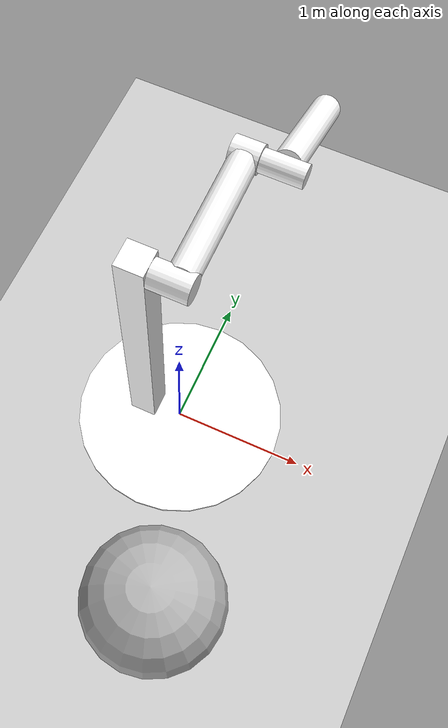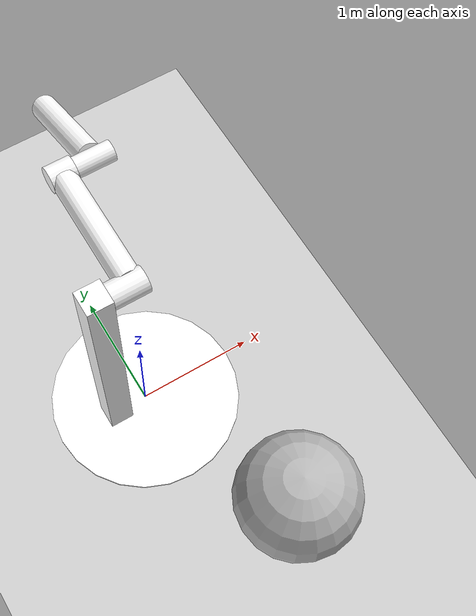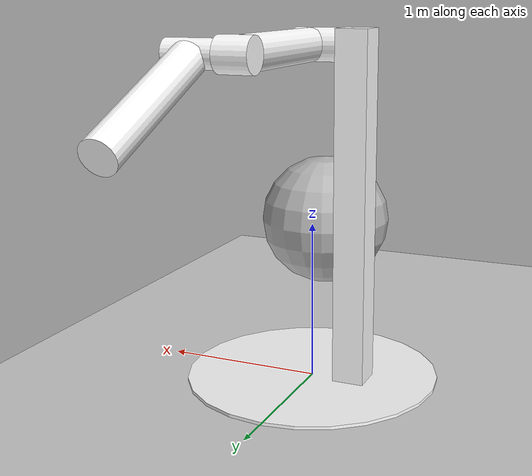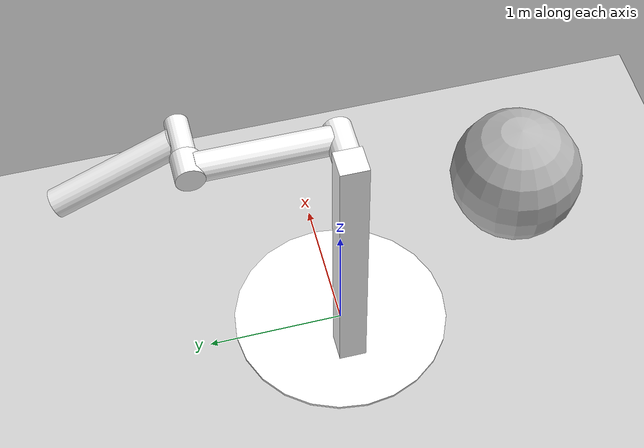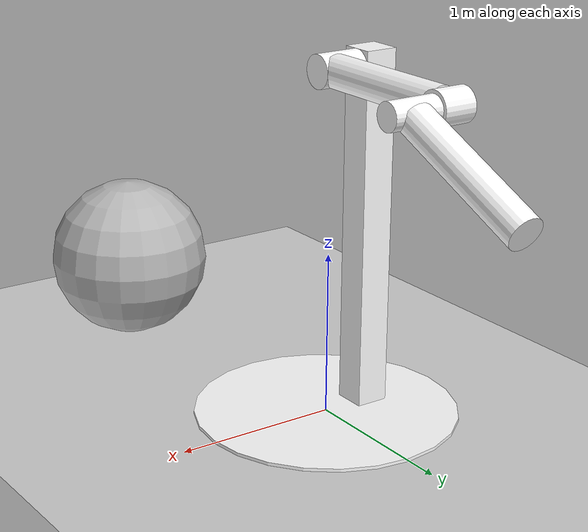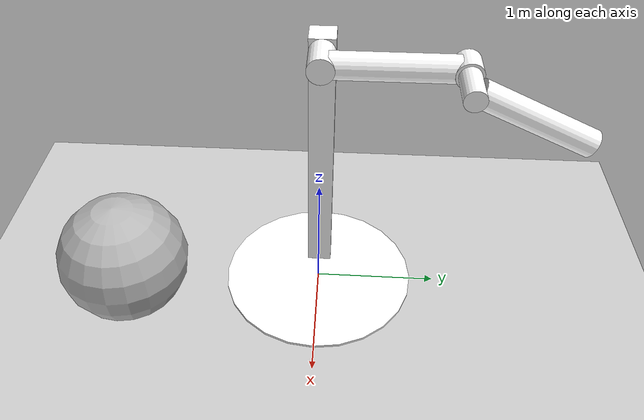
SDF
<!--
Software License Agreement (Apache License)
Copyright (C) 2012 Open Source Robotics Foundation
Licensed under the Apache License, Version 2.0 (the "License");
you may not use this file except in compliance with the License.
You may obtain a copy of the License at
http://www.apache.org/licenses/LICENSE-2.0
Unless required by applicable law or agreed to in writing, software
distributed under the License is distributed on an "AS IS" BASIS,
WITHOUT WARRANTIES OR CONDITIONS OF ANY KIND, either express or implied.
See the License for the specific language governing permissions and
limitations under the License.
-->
<?xml version="1.0" ?>
<sdf version="1.6">
  <world name="default">
    <include>
      <uri>model://ground_plane</uri>
    </include>

    <!-- blue point light -->
    <light type="point" name="point">
      <pose>0 0 0 0 0 0</pose>
      <diffuse>0 0 1 1</diffuse>
      <specular>.1 .1 .1 1</specular>
      <attenuation>
        <range>1</range>
        <linear>0.2</linear>
        <constant>0.8</constant>
        <quadratic>0.01</quadratic>
      </attenuation>
      <cast_shadows>false</cast_shadows>
    </light>

    <!-- red point light -->
    <light type="point" name="point2">
      <pose>0 0 0 0 0 0</pose>
      <diffuse>1 0 0 1</diffuse>
      <specular>.1 .1 .1 1</specular>
      <attenuation>
        <range>20</range>
        <linear>0.2</linear>
        <constant>0.8</constant>
        <quadratic>0.01</quadratic>
      </attenuation>
      <cast_shadows>false</cast_shadows>
    </light>

    <!-- green spot light -->
    <light type="spot" name="spot">
      <pose>0 0 0 0 0 0</pose>
      <diffuse>0 1 0 1</diffuse>
      <specular>.2 .2 .2 1</specular>
      <attenuation>
        <range>10</range>
        <linear>0.01</linear>
        <constant>0.2</constant>
        <quadratic>0.0</quadratic>
      </attenuation>
      <direction>0 0 -1</direction>
      <spot>
        <inner_angle>0.1</inner_angle>
        <outer_angle>0.5</outer_angle>
        <falloff>1.2</falloff>
      </spot>
      <cast_shadows>false</cast_shadows>
    </light>

    <!-- double pendulum with point and spot lights attached using plugin-->
    <model name="double_pendulum_with_lights">
      <include>
        <uri>model://double_pendulum_with_base</uri>
      </include>
      <plugin name="attach_light" filename="libAttachLightPlugin.so">
        <link>
          <link_name>double_pendulum_with_base::upper_link</link_name>
          <light>
            <light_name>point</light_name>
          </light>
          <light>
            <pose>0 0 0.45 0 0 0</pose>
            <light_name>point2</light_name>
          </light>
        </link>
        <link>
          <link_name>double_pendulum_with_base::lower_link</link_name>
          <light>
            <pose>0 0 0.9 3.14 0 0</pose>
            <light_name>spot</light_name>
          </light>
        </link>
      </plugin>
    </model>

    <!-- sphere with point light as child of link -->
    <model name="sphere_with_light">
      <pose>0.5 -1.5 0.65 0 0 0</pose>
      <link name="link">
        <!-- yellow point light -->
        <light type="point" name="point">
          <pose>0 0 0.5 0 0 0</pose>
          <diffuse>1 1 0 1</diffuse>
          <specular>.1 .1 .1 1</specular>
          <attenuation>
            <range>20</range>
            <linear>0.2</linear>
            <constant>0.8</constant>
            <quadratic>0.01</quadratic>
          </attenuation>
          <cast_shadows>false</cast_shadows>
        </light>

        <collision name="collision">
          <geometry>
            <sphere>
              <radius>0.5</radius>
            </sphere>
          </geometry>
        </collision>
        <visual name="visual">
          <geometry>
            <sphere>
              <radius>0.5</radius>
            </sphere>
          </geometry>
        </visual>
      </link>
    </model>

  </world>
</sdf>

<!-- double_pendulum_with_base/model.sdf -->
<sdf version="1.5">
  <model name="double_pendulum_with_base">
    <link name="base">
      <inertial>
        <mass>100</mass>
      </inertial>
      <visual name="vis_plate_on_ground">
        <pose>0 0 0.01 0 0 0</pose>
        <geometry>
          <cylinder>
            <radius>0.8</radius>
            <length>0.02</length>
          </cylinder>
        </geometry>
        <material><diffuse>1 1 1 1</diffuse><specular>0.1 0.1 0.1 1</specular></material>
      </visual>
      <visual name="vis_pole">
        <pose>-0.275 0 1.1 0 0 0</pose>
        <geometry>
          <box>
            <size>0.2 0.2 2.2</size>
          </box>
        </geometry>
        <material><diffuse>1 1 1 1</diffuse><specular>0.1 0.1 0.1 1</specular></material>
      </visual>
      <collision name="col_plate_on_ground">
        <pose>0 0 0.01 0 0 0</pose>
        <geometry>
          <cylinder>
            <radius>0.8</radius>
            <length>0.02</length>
          </cylinder>
        </geometry>
      </collision>
      <collision name="col_pole">
        <pose>-0.275 0 1.1 0 0 0</pose>
        <geometry>
          <box>
            <size>0.2 0.2 2.2</size>
          </box>
        </geometry>
      </collision>
    </link>
    <!-- upper link, length 1, IC -90 degrees -->
    <link name="upper_link">
      <pose>0 0 2.1 -1.5708 0 0</pose>
      <self_collide>0</self_collide>
      <inertial>
        <pose>0 0 0.5 0 0 0</pose>
      </inertial>
      <visual name="vis_upper_joint">
        <pose>-0.05 0 0 0 1.5708 0</pose>
        <geometry>
          <cylinder>
            <radius>0.1</radius>
            <length>0.3</length>
          </cylinder>
        </geometry>
        <material><diffuse>1 1 1 1</diffuse><specular>0.1 0.1 0.1 1</specular></material>
      </visual>
      <visual name="vis_lower_joint">
        <pose>0 0 1.0 0 1.5708 0</pose>
        <geometry>
          <cylinder>
            <radius>0.1</radius>
            <length>0.2</length>
          </cylinder>
        </geometry>
        <material><diffuse>1 1 1 1</diffuse><specular>0.1 0.1 0.1 1</specular></material>
      </visual>
      <visual name="vis_cylinder">
        <pose>0 0 0.5 0 0 0</pose>
        <geometry>
          <cylinder>
            <radius>0.1</radius>
            <length>0.9</length>
          </cylinder>
        </geometry>
        <material><diffuse>1 1 1 1</diffuse><specular>0.1 0.1 0.1 1</specular></material>
      </visual>
      <collision name="col_upper_joint">
        <pose>-0.05 0 0 0 1.5708 0</pose>
        <geometry>
          <cylinder>
            <radius>0.1</radius>
            <length>0.3</length>
          </cylinder>
        </geometry>
      </collision>
      <collision name="col_lower_joint">
        <pose>0 0 1.0 0 1.5708 0</pose>
        <geometry>
          <cylinder>
            <radius>0.1</radius>
            <length>0.2</length>
          </cylinder>
        </geometry>
      </collision>
      <collision name="col_cylinder">
        <pose>0 0 0.5 0 0 0</pose>
        <geometry>
          <cylinder>
            <radius>0.1</radius>
            <length>0.9</length>
          </cylinder>
        </geometry>
      </collision>
    </link>
    <!-- lower link, length 1, IC ~-120 degrees more -->
    <link name="lower_link">
      <pose>0.25 1.0 2.1 -2 0 0</pose>
      <self_collide>0</self_collide>
      <inertial>
        <pose>0 0 0.5 0 0 0</pose>
      </inertial>
      <visual name="vis_lower_joint">
        <pose>0 0 0 0 1.5708 0</pose>
        <geometry>
          <cylinder>
            <radius>0.08</radius>
            <length>0.3</length>
          </cylinder>
        </geometry>
        <material><diffuse>1 1 1 1</diffuse><specular>0.1 0.1 0.1 1</specular></material>
      </visual>
      <visual name="vis_cylinder">
        <pose>0 0 0.5 0 0 0</pose>
        <geometry>
          <cylinder>
            <radius>0.1</radius>
            <length>0.9</length>
          </cylinder>
        </geometry>
        <material><diffuse>1 1 1 1</diffuse><specular>0.1 0.1 0.1 1</specular></material>
      </visual>
      <collision name="col_lower_joint">
        <pose>0 0 0 0 1.5708 0</pose>
        <geometry>
          <cylinder>
            <radius>0.08</radius>
            <length>0.3</length>
          </cylinder>
        </geometry>
      </collision>
      <collision name="col_cylinder">
        <pose>0 0 0.5 0 0 0</pose>
        <geometry>
          <cylinder>
            <radius>0.1</radius>
            <length>0.9</length>
          </cylinder>
        </geometry>
      </collision>
    </link>
    <!-- pin joint for upper link, at origin of upper link -->
    <joint name="upper_joint" type="revolute">
      <parent>base</parent>
      <child>upper_link</child>
      <axis>
        <xyz>1.0 0 0</xyz>
      </axis>
    </joint>
    <!-- pin joint for lower link, at origin of child link -->
    <joint name="lower_joint" type="revolute">
      <parent>upper_link</parent>
      <child>lower_link</child>
      <axis>
        <xyz>1.0 0 0</xyz>
      </axis>
    </joint>
  </model>
</sdf>
